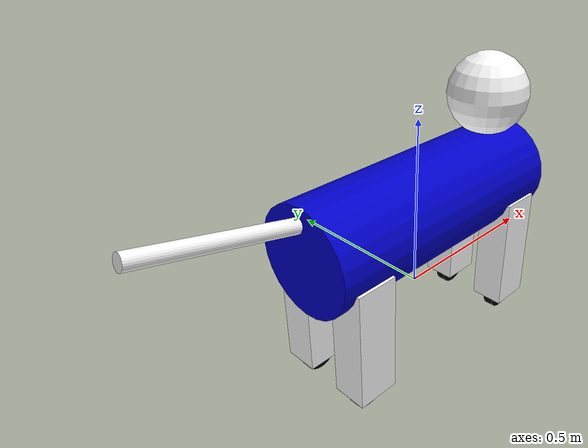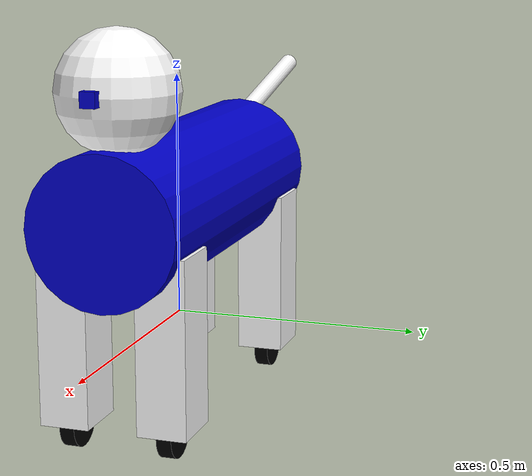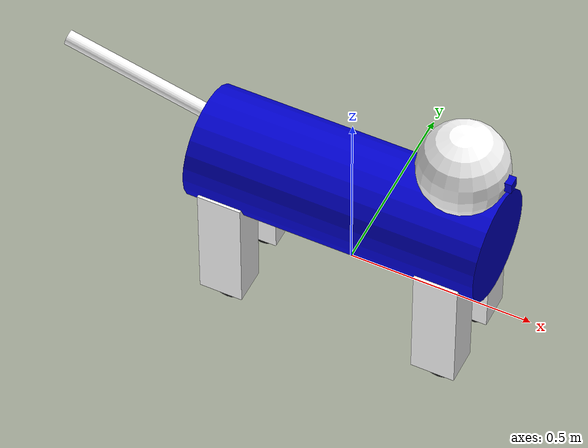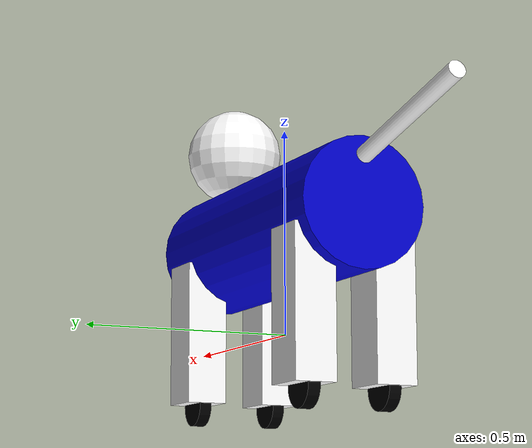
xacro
<?xml version="1.0"?>
<robot xmlns:xacro="http://www.ros.org/wiki/xacro" name="dog">

  <!-- === Материалы === -->
  <material name="blue">
    <color rgba="0 0 0.8 1"/>
  </material>
  <material name="black">
    <color rgba="0 0 0 1"/>
  </material>
  <material name="white">
    <color rgba="1 1 1 1"/>
  </material>

  <!-- === Константы === -->
  <xacro:property name="body_length" value="0.8"/>
  <xacro:property name="body_radius" value="0.15"/>
  <xacro:property name="leg_mass" value="1.0"/>
  <xacro:property name="leg_size" value="0.12 0.1 0.35"/>
  <xacro:property name="wheel_radius" value="0.05"/>
  <xacro:property name="wheel_length" value="0.03"/>
  <xacro:property name="tail_length" value="0.4"/>
  <xacro:property name="tail_radius" value="0.02"/>

  <link name="base_link"/>

  <joint name="base_to_body" type="fixed">
    <parent link="base_link"/>
    <child link="body"/>
    <origin xyz="0 0 0"/>
  </joint>

  <!-- === Тело === -->
  <link name="body">
    <visual>
      <geometry>
        <cylinder length="${body_length}" radius="${body_radius}"/>
      </geometry>
      <origin rpy="0 1.5708 0" xyz="0 0 0.25"/>
      <material name="blue"/>
    </visual>
    <collision>
      <geometry>
        <cylinder length="${body_length}" radius="${body_radius}"/>
      </geometry>
      <origin rpy="0 1.5708 0" xyz="0 0 0.25"/>
    </collision>
    <inertial>
      <mass value="8"/>
      <inertia ixx="0.5" ixy="0.0" ixz="0.0" iyy="0.5" iyz="0.0" izz="0.5"/>
    </inertial>
  </link>

  <!-- === Голова === -->
  <link name="head">
    <visual>
      <geometry>
        <sphere radius="0.12"/>
      </geometry>
      <origin xyz="0 0 0"/>
      <material name="white"/>
    </visual>
    <collision>
      <geometry>
        <sphere radius="0.12"/>
      </geometry>
      <origin xyz="0 0 0.06"/>
    </collision>
    <inertial>
      <mass value="1.0"/>
      <inertia ixx="0.02" ixy="0.0" ixz="0.0" iyy="0.02" iyz="0.0" izz="0.02"/>
    </inertial>
  </link>

  <joint name="neck_joint" type="revolute">
    <parent link="body"/>
    <child link="head"/>
    <origin xyz="0.3 0 0.5"/>
    <axis xyz="0 0 1"/>
    <limit lower="-1.57" upper="1.57" effort="1.0" velocity="1.0"/>
  </joint>

  <link name="nose">
    <visual>
      <geometry>
        <box size="0.03 0.03 0.03"/>
      </geometry>
      <material name="blue"/>
    </visual>
  </link>

  <joint name="tonose" type="fixed">
    <parent link="head"/>
    <child link="nose"/>
    <origin xyz="0.12 0 0"/>
  </joint>

  <!-- === Макрос для ноги с колесом === -->
  <xacro:macro name="leg_wheel" params="prefix x y z">
    <link name="${prefix}_leg">
      <visual>
        <geometry><box size="${leg_size}"/></geometry>
        <origin xyz="0 0 -0.17"/>
        <material name="white"/>
      </visual>
      <collision>
        <geometry><box size="${leg_size}"/></geometry>
        <origin xyz="0 0 -0.17"/>
      </collision>
      <inertial>
        <mass value="${leg_mass}"/>
        <inertia ixx="0.03" ixy="0.0" ixz="0.0" iyy="0.03" iyz="0.0" izz="0.03"/>
      </inertial>
    </link>

    <joint name="${prefix}_leg_joint" type="revolute">
      <parent link="body"/>
      <child link="${prefix}_leg"/>
      <origin xyz="${x} ${y} ${z}"/>
      <axis xyz="0 1 0"/>
      <limit lower="-1.0" upper="1.0" effort="5" velocity="1"/>
    </joint>

    <link name="${prefix}_wheel">
      <visual>
        <origin rpy="1.5708 0 0" xyz="0 0 0"/>
        <geometry><cylinder radius="${wheel_radius}" length="${wheel_length}"/></geometry>
        <material name="black"/>
      </visual>
      <collision>
        <origin rpy="1.5708 0 0" xyz="0 0 0"/>
        <geometry><cylinder radius="${wheel_radius}" length="${wheel_length}"/></geometry>
      </collision>
      <inertial>
        <mass value="0.2"/>
        <inertia ixx="0.005" ixy="0.0" ixz="0.0" iyy="0.005" iyz="0.0" izz="0.005"/>
      </inertial>
    </link>

    <joint name="${prefix}_wheel_joint" type="continuous">
      <parent link="${prefix}_leg"/>
      <child link="${prefix}_wheel"/>
      <origin xyz="0 0 -0.35"/>
      <axis xyz="0 1 0"/>
    </joint>
  </xacro:macro>

  <!-- === Ноги и колеса === -->
  <xacro:leg_wheel prefix="front_left" x="0.3" y="0.1" z="0.2"/>
  <xacro:leg_wheel prefix="front_right" x="0.3" y="-0.1" z="0.2"/>
  <xacro:leg_wheel prefix="rear_left" x="-0.3" y="0.1" z="0.2"/>
  <xacro:leg_wheel prefix="rear_right" x="-0.3" y="-0.1" z="0.2"/>

  <!-- === Хвост === -->
  <link name="tail">
    <visual>
      <geometry>
        <cylinder length="${tail_length}" radius="${tail_radius}"/>
      </geometry>
      <origin rpy="0 1.8 0" xyz="-0.2 0 0"/>
      <material name="white"/>
    </visual>
    <collision>
      <geometry>
        <cylinder length="${tail_length}" radius="${tail_radius}"/>
      </geometry>
      <origin rpy="0 1.8 0" xyz="-0.2 0 0"/>
    </collision>
    <inertial>
      <mass value="0.5"/>
      <inertia ixx="0.01" ixy="0.0" ixz="0.0" iyy="0.01" iyz="0.0" izz="0.01"/>
    </inertial>
  </link>

  <joint name="tail_joint" type="revolute">
    <parent link="body"/>
    <child link="tail"/>
    <origin xyz="-0.4 0 0.4"/>
    <axis xyz="0 0 1"/>
    <limit lower="-0.8" upper="0.8" effort="2.0" velocity="2.0"/>
  </joint>

</robot>
